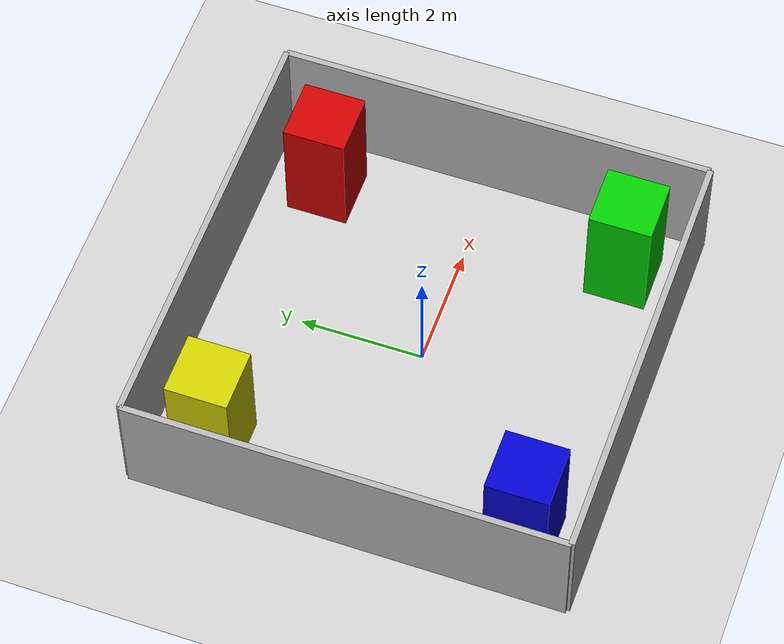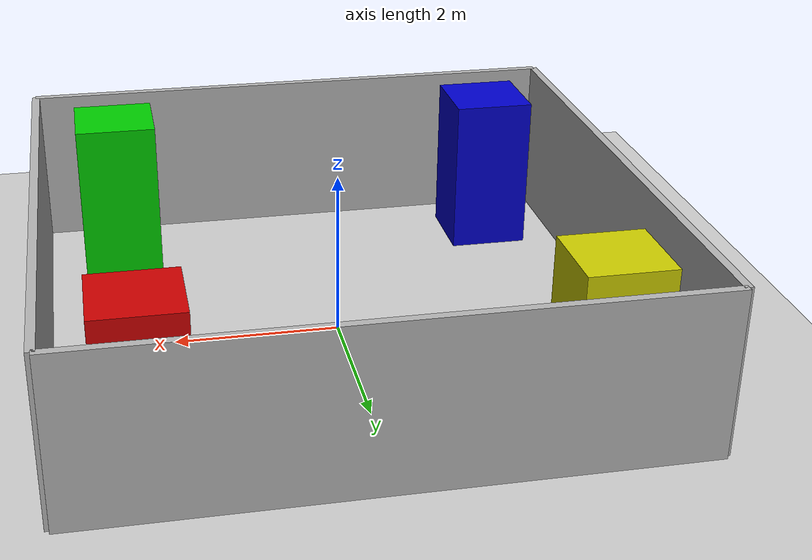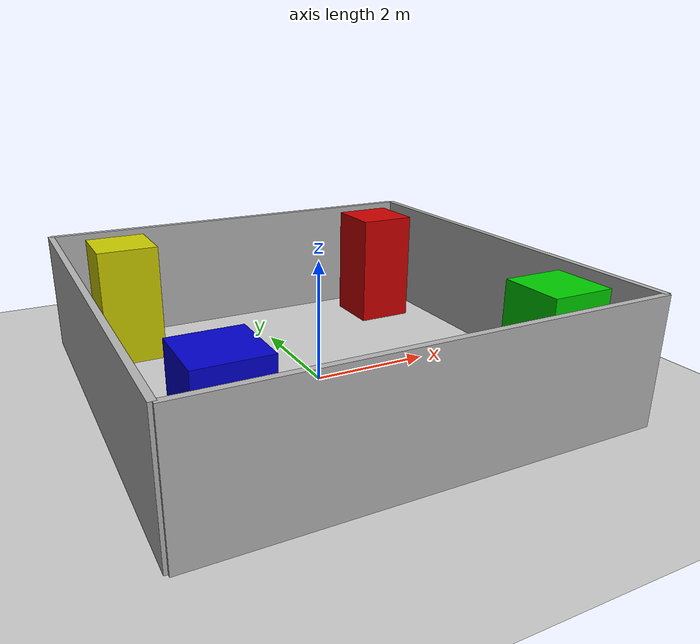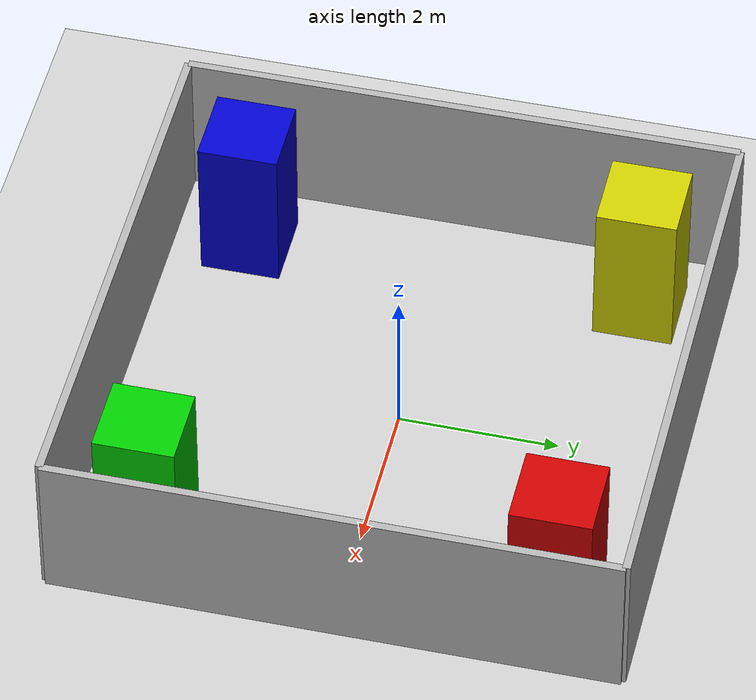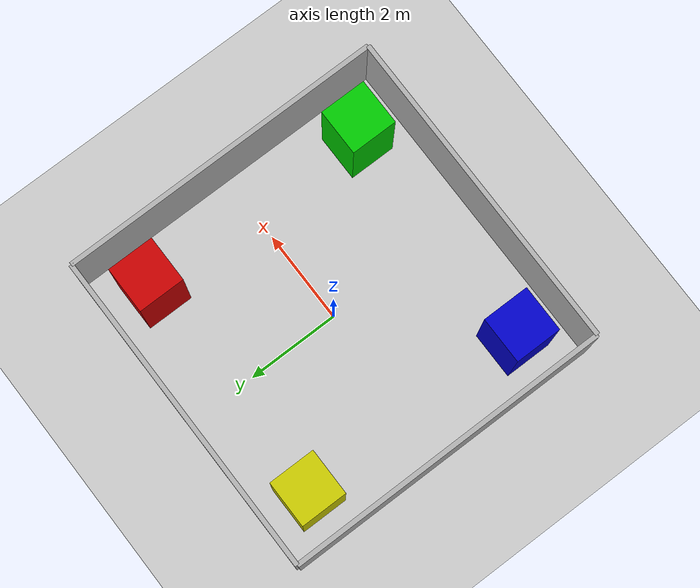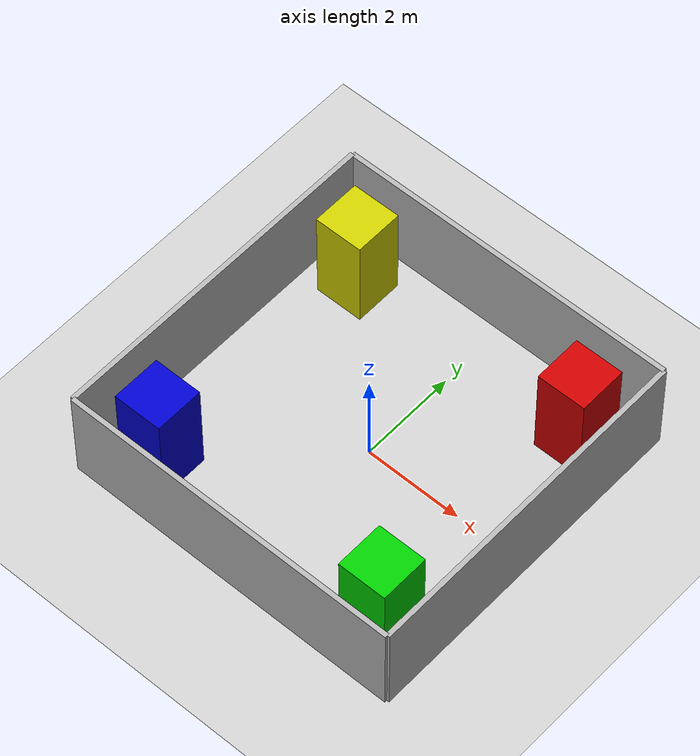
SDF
<?xml version="1.0" ?>
<sdf version="1.6">
  <world name="inverse_corners_room">
    <!-- Include the default ground plane and sun -->
    <include>
      <uri>model://ground_plane</uri>
    </include>
    <include>
      <uri>model://sun</uri>
    </include>

    <!-- Define the room walls -->
    <!-- Walls are 0.1 meters thick and 2 meters high -->
    <!-- The room spans from -3.5 to 3.5 meters on both X and Y axes -->

    <!-- North Wall -->
    <model name="north_wall">
      <static>true</static>
      <link name="link">
        <pose>0 3.5 1 0 0 0</pose>
        <collision name="collision">
          <geometry>
            <box>
              <size>7 0.1 2</size>
            </box>
          </geometry>
        </collision>
        <visual name="visual">
          <geometry>
            <box>
              <size>7 0.1 2</size>
            </box>
          </geometry>
          <material>
            <ambient>0.7 0.7 0.7 1</ambient>
          </material>
        </visual>
      </link>
    </model>

    <!-- South Wall -->
    <model name="south_wall">
      <static>true</static>
      <link name="link">
        <pose>0 -3.5 1 0 0 0</pose>
        <collision name="collision">
          <geometry>
            <box>
              <size>7 0.1 2</size>
            </box>
          </geometry>
        </collision>
        <visual name="visual">
          <geometry>
            <box>
              <size>7 0.1 2</size>
            </box>
          </geometry>
          <material>
            <ambient>0.7 0.7 0.7 1</ambient>
          </material>
        </visual>
      </link>
    </model>

    <!-- East Wall -->
    <model name="east_wall">
      <static>true</static>
      <link name="link">
        <pose>3.5 0 1 0 0 0</pose>
        <collision name="collision">
          <geometry>
            <box>
              <size>0.1 7 2</size>
            </box>
          </geometry>
        </collision>
        <visual name="visual">
          <geometry>
            <box>
              <size>0.1 7 2</size>
            </box>
          </geometry>
          <material>
            <ambient>0.7 0.7 0.7 1</ambient>
          </material>
        </visual>
      </link>
    </model>

    <!-- West Wall -->
    <model name="west_wall">
      <static>true</static>
      <link name="link">
        <pose>-3.5 0 1 0 0 0</pose>
        <collision name="collision">
          <geometry>
            <box>
              <size>0.1 7 2</size>
            </box>
          </geometry>
        </collision>
        <visual name="visual">
          <geometry>
            <box>
              <size>0.1 7 2</size>
            </box>
          </geometry>
          <material>
            <ambient>0.7 0.7 0.7 1</ambient>
          </material>
        </visual>
      </link>
    </model>

    <!-- Inverse Corners (Convex Corners) -->

    <!-- Northeast Corner -->
    <model name="northeast_corner">
      <static>true</static>
      <link name="link">
        <pose>2.5 2.5 1 0 0 0</pose>
        <collision name="collision">
          <geometry>
            <box>
              <size>1 1 2</size>
            </box>
          </geometry>
        </collision>
        <visual name="visual">
          <geometry>
            <box>
              <size>1 1 2</size>
            </box>
          </geometry>
          <material>
            <ambient>0.8 0 0 1</ambient>
          </material>
        </visual>
      </link>
    </model>

    <!-- Southeast Corner -->
    <model name="southeast_corner">
      <static>true</static>
      <link name="link">
        <pose>2.5 -2.5 1 0 0 0</pose>
        <collision name="collision">
          <geometry>
            <box>
              <size>1 1 2</size>
            </box>
          </geometry>
        </collision>
        <visual name="visual">
          <geometry>
            <box>
              <size>1 1 2</size>
            </box>
          </geometry>
          <material>
            <ambient>0 0.8 0 1</ambient>
          </material>
        </visual>
      </link>
    </model>

    <!-- Southwest Corner -->
    <model name="southwest_corner">
      <static>true</static>
      <link name="link">
        <pose>-2.5 -2.5 1 0 0 0</pose>
        <collision name="collision">
          <geometry>
            <box>
              <size>1 1 2</size>
            </box>
          </geometry>
        </collision>
        <visual name="visual">
          <geometry>
            <box>
              <size>1 1 2</size>
            </box>
          </geometry>
          <material>
            <ambient>0 0 0.8 1</ambient>
          </material>
        </visual>
      </link>
    </model>

    <!-- Northwest Corner -->
    <model name="northwest_corner">
      <static>true</static>
      <link name="link">
        <pose>-2.5 2.5 1 0 0 0</pose>
        <collision name="collision">
          <geometry>
            <box>
              <size>1 1 2</size>
            </box>
          </geometry>
        </collision>
        <visual name="visual">
          <geometry>
            <box>
              <size>1 1 2</size>
            </box>
          </geometry>
          <material>
            <ambient>0.8 0.8 0 1</ambient>
          </material>
        </visual>
      </link>
    </model>

    <!-- Optional: Add obstacles or features here -->

  </world>
</sdf>
